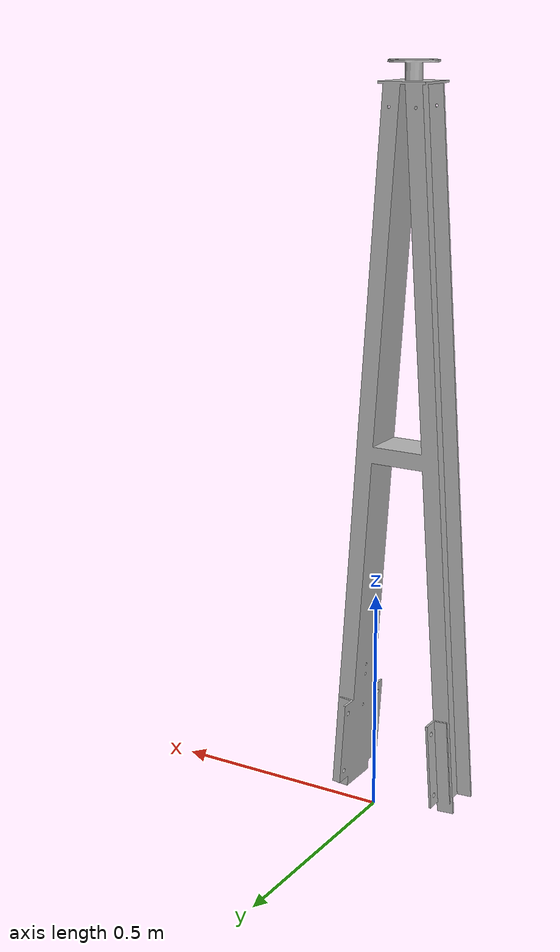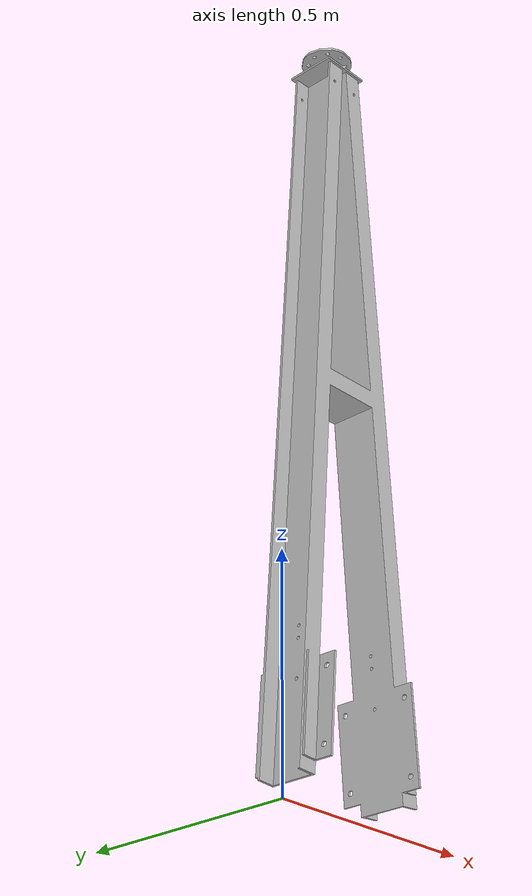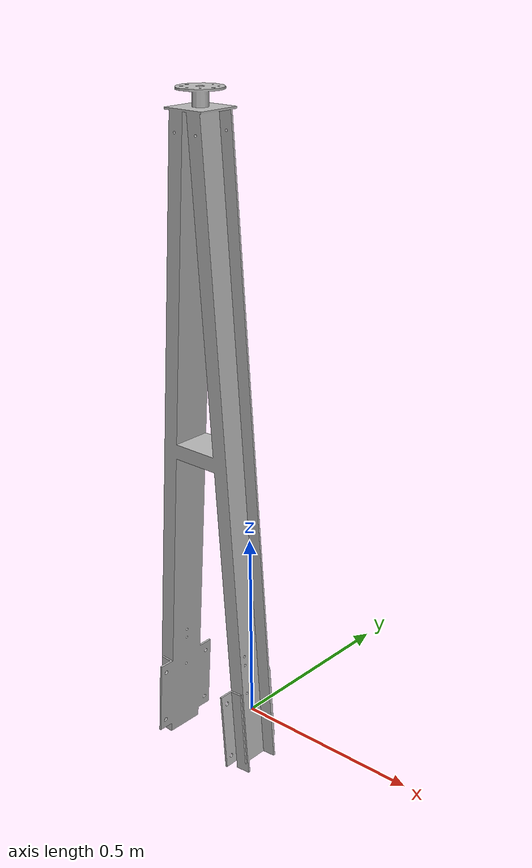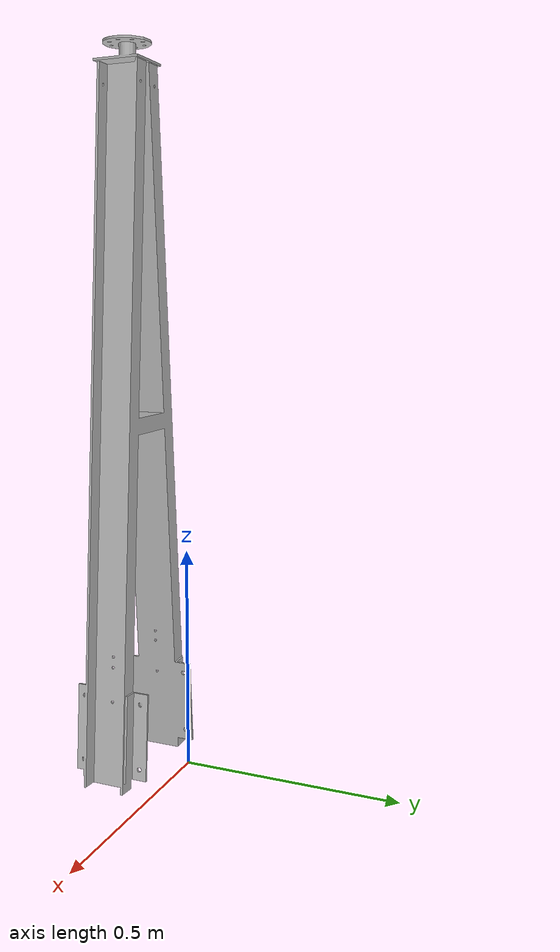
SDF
<?xml version='1.0'?>
<sdf version='1.4'>
  <model name="FGAG1002_COLUMNA3">
 <static>false</static>
 <link name="mesh_link">
   <pose>0 0 -10 0 0 0</pose>
	<inertial>
            <mass>100.0</mass>
 	</inertial>
        <visual name="visual">
        <geometry>
            <mesh><uri>model://FGAG1002_COLUMNA3/meshes/FGAG1002_COLUMNA3.stl</uri></mesh>
          </geometry>
        </visual>
        <collision name="collision">
          <geometry>
            <mesh><uri>model://FGAG1002_COLUMNA3/meshes/FGAG1002_COLUMNA3.stl</uri></mesh>
          </geometry>
        </collision>
      </link>
      <joint name='anchor' type='fixed'>
        <child>mesh_link</child>
        <parent>world</parent>
      </joint>
  </model>
</sdf>
